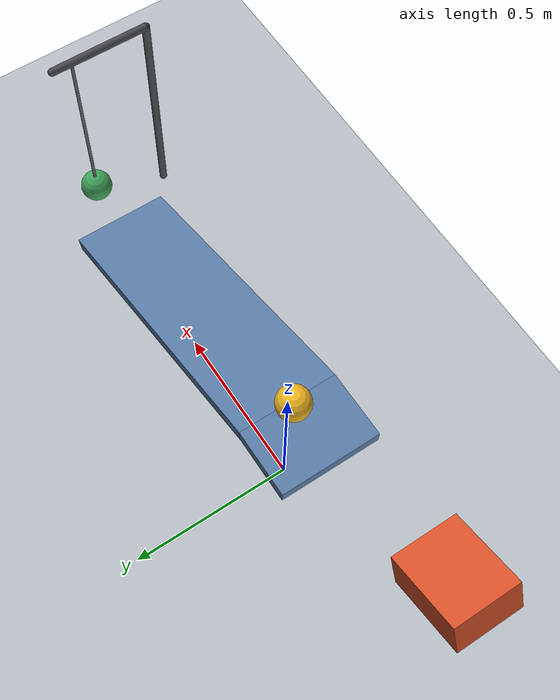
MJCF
<mujoco model="spring_cart_ramp_pendulum">
  <compiler angle="degree" autolimits="true"/>
  <option timestep="0.002" gravity="0 0 -9.81" integrator="implicitfast" iterations="100"/>
  <size njmax="1000" nconmax="200"/>

  <visual>
    <headlight ambient="0.35 0.35 0.35" diffuse="0.7 0.7 0.7" specular="0.2 0.2 0.2"/>
  </visual>

  <!-- solref damping ratio 0.69010673 targets restitution approximately 0.05. -->
  <!-- Friction entries are sliding, torsional, and rolling, respectively. -->

  <worldbody>
    <light name="main_light" pos="0 -2 3" dir="0 0.5 -1" directional="true"/>
    <camera name="overview" pos="0.25 -3 1.65" xyaxes="1 0 0 0 0.3420201433 0.9396926208"/>

    <!-- Additional rolling resistance on the floor allows passive settling. -->
    <geom name="floor" type="plane" pos="0 0 0" size="6 3 0.1" friction="0.68 0.005 0.005" condim="6" solref="0.008 0.69010673" solimp="0.95 0.99 0.001" rgba="0.72 0.74 0.77 1"/>

    <!-- Ramp surface endpoints: (0,0,0.4920201433) and (0.9396926208,0,0.15). -->
    <!-- The horizontal loading lip holds the initially stationary ball. -->
    <body name="ramp1" pos="0 0 0">
      <geom name="ramp1_slope" type="box" pos="0.4630059075 0 0.3022162192" quat="0.9848077530 0 0.1736481777 0" size="0.50 0.15 0.02" friction="0.68 0.005 0.0002" condim="6" solref="0.008 0.69010673" solimp="0.95 0.99 0.001" rgba="0.35 0.48 0.65 1"/>
      <geom name="ramp1_loading_lip" type="box" pos="-0.10 0 0.4720201433" size="0.10 0.15 0.02" friction="0.68 0.005 0.0002" condim="6" solref="0.008 0.69010673" solimp="0.95 0.99 0.001" rgba="0.35 0.48 0.65 1"/>
    </body>

    <!-- The ideal axial guide descends parallel to the ramp. -->
    <!-- q=0 compresses the spring by 0.20 m; first ball contact occurs at q=0.50 m. -->
    <body name="cart1" pos="-0.6451971297 0 0.7677534379" quat="0.9848077530 0 0.1736481777 0">
      <joint name="cart1_slide" type="slide" axis="1 0 0" limited="true" range="0 0.60" stiffness="18" springref="0.20" damping="0.20"/>
      <geom name="cart1_chassis" type="box" size="0.11 0.09 0.05" mass="0.50" friction="0.68 0.005 0.0002" condim="6" solref="0.008 0.69010673" solimp="0.95 0.99 0.001" rgba="0.85 0.32 0.16 1"/>
    </body>

    <body name="ball1" pos="-0.025 0 0.5420201433">
      <freejoint name="ball1_free"/>
      <geom name="ball1_sphere" type="sphere" size="0.05" mass="0.20" friction="0.68 0.005 0.0002" condim="6" solref="0.008 0.69010673" solimp="0.95 0.99 0.001" rgba="0.95 0.72 0.12 1"/>
    </body>

    <!-- The bob's near surface is 0.10 m beyond the ramp's low endpoint. -->
    <body name="pendulum1" pos="1.0896926208 0 0.75">
      <joint name="pendulum1_hinge" type="hinge" axis="0 1 0" damping="0.04"/>
      <geom name="pendulum1_rod" type="capsule" fromto="0 0 0 0 0 -0.55" size="0.005" mass="0.01" friction="0.68 0.005 0.0002" condim="6" solref="0.008 0.69010673" solimp="0.95 0.99 0.001" rgba="0.35 0.36 0.38 1"/>
      <geom name="pendulum1_bob" type="sphere" pos="0 0 -0.60" size="0.05" mass="0.20" friction="0.68 0.005 0.0002" condim="6" solref="0.008 0.69010673" solimp="0.95 0.99 0.001" rgba="0.25 0.65 0.35 1"/>
    </body>

    <body name="pendulum1_support" pos="1.0896926208 0 0">
      <geom name="pendulum1_support_column" type="capsule" fromto="0 -0.24 0.015 0 -0.24 0.75" size="0.012" contype="0" conaffinity="0" rgba="0.28 0.29 0.31 1"/>
      <geom name="pendulum1_support_crossbar" type="capsule" fromto="0 -0.24 0.75 0 0.06 0.75" size="0.012" contype="0" conaffinity="0" rgba="0.28 0.29 0.31 1"/>
    </body>
  </worldbody>

  <!-- Joint order: cart slide; ball free joint; pendulum hinge. All start from rest. -->
  <keyframe>
    <key name="start" qpos="0 -0.025 0 0.5420201433 1 0 0 0 0" qvel="0 0 0 0 0 0 0 0"/>
  </keyframe>
</mujoco>
